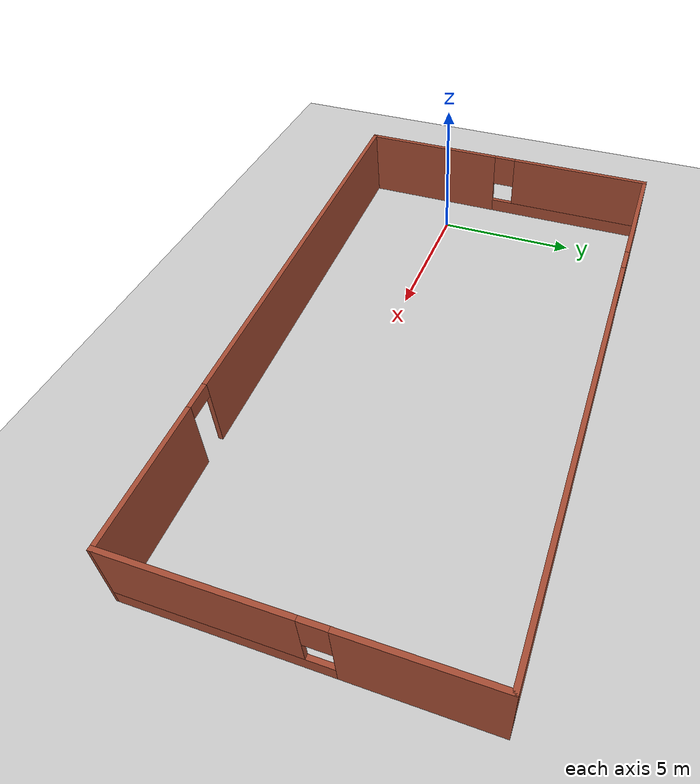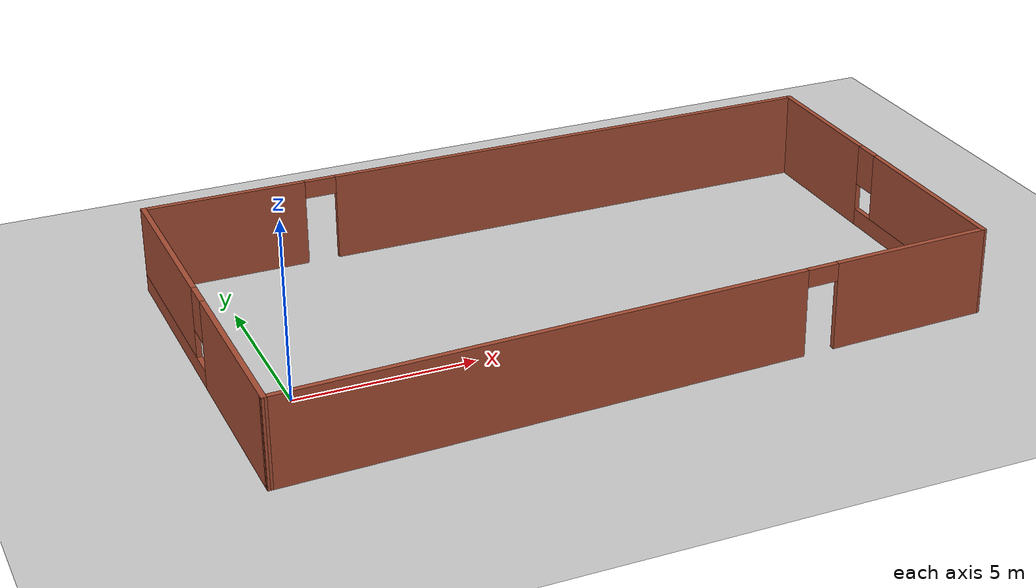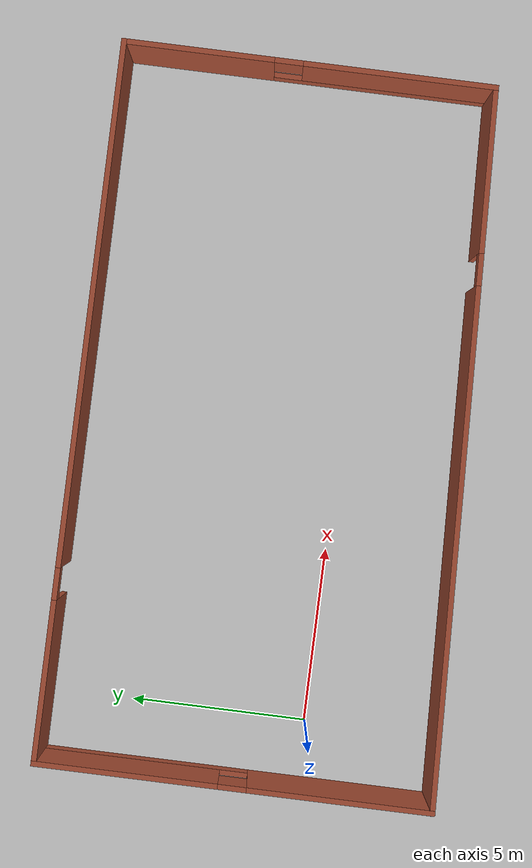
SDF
<sdf version="1.7">
 <world name="default">
  <light name="sun" type="directional">
   <pose>0 0 10 0 -0 0</pose>
   <diffuse>0.8 0.8 0.8 1</diffuse>
   <specular>0.2 0.2 0.2 1</specular>
   <attenuation>
    <range>1000</range>
    <constant>0.9</constant>
    <linear>0.01</linear>
    <quadratic>0.001</quadratic>
   </attenuation>
   <direction>-0.5 0.1 -0.9</direction>
   <spot><inner_angle>0</inner_angle><outer_angle>0</outer_angle><falloff>0</falloff></spot>
  </light>
  <model name="ground_plane">
   <static>1</static>
   <link name="link">
    <collision name="collision">
     <geometry><plane><normal>0 0 1</normal><size>100 100</size></plane></geometry>
     <surface>
      <contact><collide_bitmask>65535</collide_bitmask></contact>
      <friction><ode><mu>100</mu><mu2>50</mu2></ode></friction>
     </surface>
    </collision>
    <visual name="visual">
     <cast_shadows>0</cast_shadows>
     <geometry><plane><normal>0 0 1</normal><size>100 100</size></plane></geometry>
     <material>
      <script><uri>file://media/materials/scripts/gazebo.material</uri><name>Gazebo/Grey</name></script>
     </material>
    </visual>
   </link>
  </model>
  <gravity>0 0 -9.8</gravity>
  <magnetic_field>6e-06 2.3e-05 -4.2e-05</magnetic_field>
  <atmosphere type="adiabatic"/>
  <physics type="ode">
   <max_step_size>0.001</max_step_size>
   <real_time_factor>1</real_time_factor>
   <real_time_update_rate>1000</real_time_update_rate>
  </physics>
  <scene><ambient>0.4 0.4 0.4 1</ambient><background>0.7 0.7 0.7 1</background><shadows>1</shadows></scene>
  <audio><device>default</device></audio>
  <spherical_coordinates>
   <surface_model>EARTH_WGS84</surface_model>
   <latitude_deg>0</latitude_deg>
   <longitude_deg>0</longitude_deg>
   <elevation>0</elevation>
   <heading_deg>0</heading_deg>
  </spherical_coordinates>
  <model name="test">
   <pose>8.34 1.81863 0 0 -0 0</pose>
   <link name="Wall_0">
    <pose>-10.05 0.001372 0 0 -0 1.5708</pose>
    <visual name="Wall_0_Visual_0">
     <pose>-2.99577 0 1.25 0 -0 0</pose>
     <geometry><box><size>5.25845 0.15 2.5</size></box></geometry>
     <material>
      <script><uri>file://media/materials/scripts/gazebo.material</uri><name>Gazebo/Bricks</name></script>
      <ambient>1 1 1 1</ambient>
     </material>
     <meta><layer>0</layer></meta>
    </visual>
    <collision name="Wall_0_Collision_0">
     <geometry><box><size>5.25845 0.15 2.5</size></box></geometry>
     <pose>-2.99577 0 1.25 0 -0 0</pose>
    </collision>
    <visual name="Wall_0_Visual_1">
     <pose>2.62923 0 0.25 0 -0 0</pose>
     <geometry><box><size>5.99155 0.15 0.5</size></box></geometry>
     <material>
      <script><uri>file://media/materials/scripts/gazebo.material</uri><name>Gazebo/Bricks</name></script>
      <ambient>1 1 1 1</ambient>
     </material>
     <meta><layer>0</layer></meta>
    </visual>
    <collision name="Wall_0_Collision_1">
     <geometry><box><size>5.99155 0.15 0.5</size></box></geometry>
     <pose>2.62923 0 0.25 0 -0 0</pose>
    </collision>
    <visual name="Wall_0_Visual_2">
     <pose>3.02923 0 1.5 0 -0 0</pose>
     <geometry><box><size>5.19155 0.15 2</size></box></geometry>
     <material>
      <script><uri>file://media/materials/scripts/gazebo.material</uri><name>Gazebo/Bricks</name></script>
      <ambient>1 1 1 1</ambient>
     </material>
     <meta><layer>0</layer></meta>
    </visual>
    <collision name="Wall_0_Collision_2">
     <geometry><box><size>5.19155 0.15 2</size></box></geometry>
     <pose>3.02923 0 1.5 0 -0 0</pose>
    </collision>
    <visual name="Wall_0_Visual_3">
     <pose>0.033454 0 1.9 0 -0 0</pose>
     <geometry><box><size>0.8 0.15 1.2</size></box></geometry>
     <material>
      <script><uri>file://media/materials/scripts/gazebo.material</uri><name>Gazebo/Bricks</name></script>
      <ambient>1 1 1 1</ambient>
     </material>
     <meta><layer>0</layer></meta>
    </visual>
    <collision name="Wall_0_Collision_3">
     <geometry><box><size>0.8 0.15 1.2</size></box></geometry>
     <pose>0.033454 0 1.9 0 -0 0</pose>
    </collision>
   </link>
   <link name="Wall_1">
    <pose>-0 5.55137 0 0 -0 0</pose>
    <visual name="Wall_1_Visual_0">
     <pose>-7.81217 0 1.25 0 -0 0</pose>
     <geometry><box><size>4.62566 0.15 2.5</size></box></geometry>
     <material>
      <script><uri>file://media/materials/scripts/gazebo.material</uri><name>Gazebo/Bricks</name></script>
      <ambient>1 1 1 1</ambient>
     </material>
     <meta><layer>0</layer></meta>
    </visual>
    <collision name="Wall_1_Collision_0">
     <geometry><box><size>4.62566 0.15 2.5</size></box></geometry>
     <pose>-7.81217 0 1.25 0 -0 0</pose>
    </collision>
    <visual name="Wall_1_Visual_1">
     <pose>2.76283 0 1.25 0 -0 0</pose>
     <geometry><box><size>14.7243 0.15 2.5</size></box></geometry>
     <material>
      <script><uri>file://media/materials/scripts/gazebo.material</uri><name>Gazebo/Bricks</name></script>
      <ambient>1 1 1 1</ambient>
     </material>
     <meta><layer>0</layer></meta>
    </visual>
    <collision name="Wall_1_Collision_1">
     <geometry><box><size>14.7243 0.15 2.5</size></box></geometry>
     <pose>2.76283 0 1.25 0 -0 0</pose>
    </collision>
    <visual name="Wall_1_Visual_2">
     <pose>-5.04934 0 2.25 0 -0 0</pose>
     <geometry><box><size>0.9 0.15 0.5</size></box></geometry>
     <material>
      <script><uri>file://media/materials/scripts/gazebo.material</uri><name>Gazebo/Bricks</name></script>
      <ambient>1 1 1 1</ambient>
     </material>
     <meta><layer>0</layer></meta>
    </visual>
    <collision name="Wall_1_Collision_2">
     <geometry><box><size>0.9 0.15 0.5</size></box></geometry>
     <pose>-5.04934 0 2.25 0 -0 0</pose>
    </collision>
   </link>
   <link name="Wall_2">
    <pose>10.05 0.376372 0 0 -0 -1.5708</pose>
    <visual name="Wall_2_Visual_0">
     <pose>-3.11684 0 1.25 0 -0 0</pose>
     <geometry><box><size>4.26632 0.15 2.5</size></box></geometry>
     <material>
      <script><uri>file://media/materials/scripts/gazebo.material</uri><name>Gazebo/Bricks</name></script>
      <ambient>1 1 1 1</ambient>
     </material>
     <meta><layer>0</layer></meta>
    </visual>
    <collision name="Wall_2_Collision_0">
     <geometry><box><size>4.26632 0.15 2.5</size></box></geometry>
     <pose>-3.11684 0 1.25 0 -0 0</pose>
    </collision>
    <visual name="Wall_2_Visual_1">
     <pose>2.13316 0 0.25 0 -0 0</pose>
     <geometry><box><size>6.23368 0.15 0.5</size></box></geometry>
     <material>
      <script><uri>file://media/materials/scripts/gazebo.material</uri><name>Gazebo/Bricks</name></script>
      <ambient>1 1 1 1</ambient>
     </material>
     <meta><layer>0</layer></meta>
    </visual>
    <collision name="Wall_2_Collision_1">
     <geometry><box><size>6.23368 0.15 0.5</size></box></geometry>
     <pose>2.13316 0 0.25 0 -0 0</pose>
    </collision>
    <visual name="Wall_2_Visual_2">
     <pose>2.53316 0 1.5 0 -0 0</pose>
     <geometry><box><size>5.43368 0.15 2</size></box></geometry>
     <material>
      <script><uri>file://media/materials/scripts/gazebo.material</uri><name>Gazebo/Bricks</name></script>
      <ambient>1 1 1 1</ambient>
     </material>
     <meta><layer>0</layer></meta>
    </visual>
    <collision name="Wall_2_Collision_2">
     <geometry><box><size>5.43368 0.15 2</size></box></geometry>
     <pose>2.53316 0 1.5 0 -0 0</pose>
    </collision>
    <visual name="Wall_2_Visual_3">
     <pose>-0.583678 0 1.9 0 -0 0</pose>
     <geometry><box><size>0.8 0.15 1.2</size></box></geometry>
     <material>
      <script><uri>file://media/materials/scripts/gazebo.material</uri><name>Gazebo/Bricks</name></script>
      <ambient>1 1 1 1</ambient>
     </material>
     <meta><layer>0</layer></meta>
    </visual>
    <collision name="Wall_2_Collision_3">
     <geometry><box><size>0.8 0.15 1.2</size></box></geometry>
     <pose>-0.583678 0 1.9 0 -0 0</pose>
    </collision>
   </link>
   <link name="Wall_3">
    <pose>-0 -5.17363 0 0 -0 -3.1043</pose>
    <visual name="Wall_3_Visual_0">
     <pose>-7.79784 0 1.25 0 -0 0</pose>
     <geometry><box><size>4.66831 0.15 2.5</size></box></geometry>
     <material>
      <script><uri>file://media/materials/scripts/gazebo.material</uri><name>Gazebo/Bricks</name></script>
      <ambient>1 1 1 1</ambient>
     </material>
     <meta><layer>0</layer></meta>
    </visual>
    <collision name="Wall_3_Collision_0">
     <geometry><box><size>4.66831 0.15 2.5</size></box></geometry>
     <pose>-7.79784 0 1.25 0 -0 0</pose>
    </collision>
    <visual name="Wall_3_Visual_1">
     <pose>2.78416 0 1.25 0 -0 0</pose>
     <geometry><box><size>14.6957 0.15 2.5</size></box></geometry>
     <material>
      <script><uri>file://media/materials/scripts/gazebo.material</uri><name>Gazebo/Bricks</name></script>
      <ambient>1 1 1 1</ambient>
     </material>
     <meta><layer>0</layer></meta>
    </visual>
    <collision name="Wall_3_Collision_1">
     <geometry><box><size>14.6957 0.15 2.5</size></box></geometry>
     <pose>2.78416 0 1.25 0 -0 0</pose>
    </collision>
    <visual name="Wall_3_Visual_2">
     <pose>-5.01368 0 2.25 0 -0 0</pose>
     <geometry><box><size>0.9 0.15 0.5</size></box></geometry>
     <material>
      <script><uri>file://media/materials/scripts/gazebo.material</uri><name>Gazebo/Bricks</name></script>
      <ambient>1 1 1 1</ambient>
     </material>
     <meta><layer>0</layer></meta>
    </visual>
    <collision name="Wall_3_Collision_2">
     <geometry><box><size>0.9 0.15 0.5</size></box></geometry>
     <pose>-5.01368 0 2.25 0 -0 0</pose>
    </collision>
   </link>
   <static>1</static>
  </model>
 </world>
</sdf>
